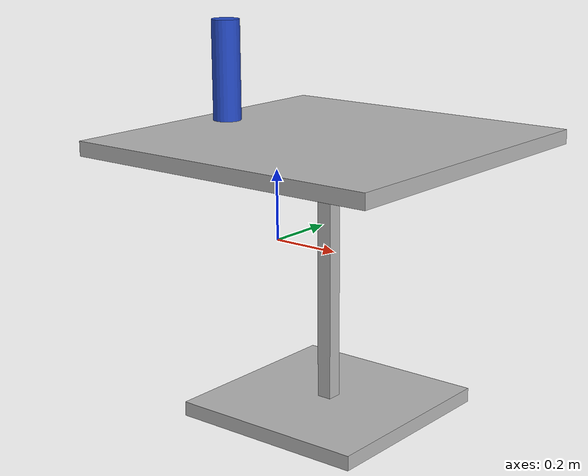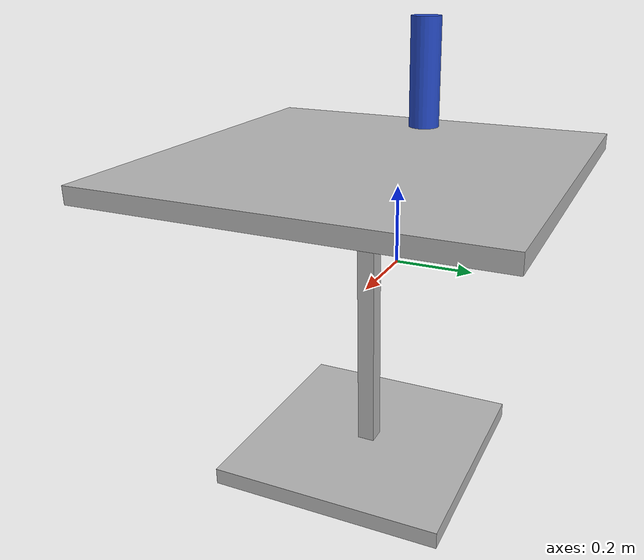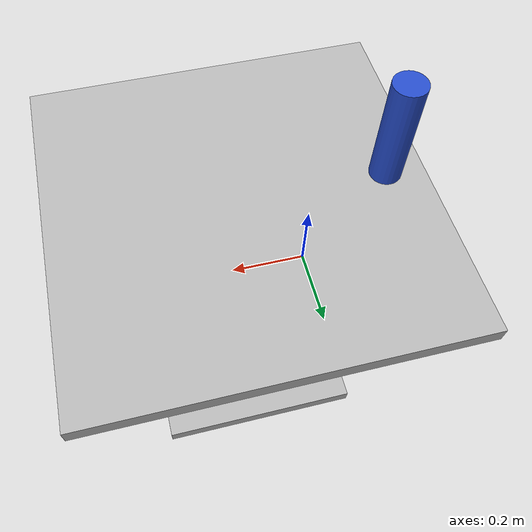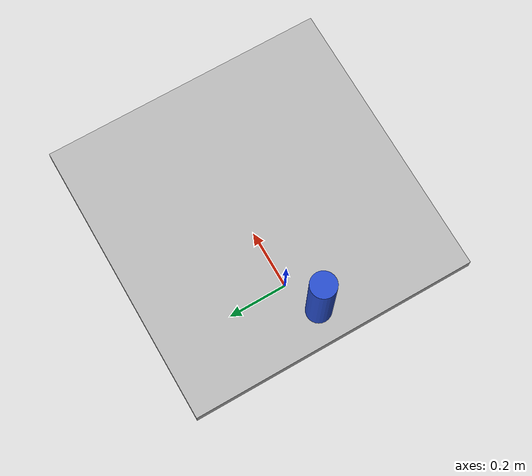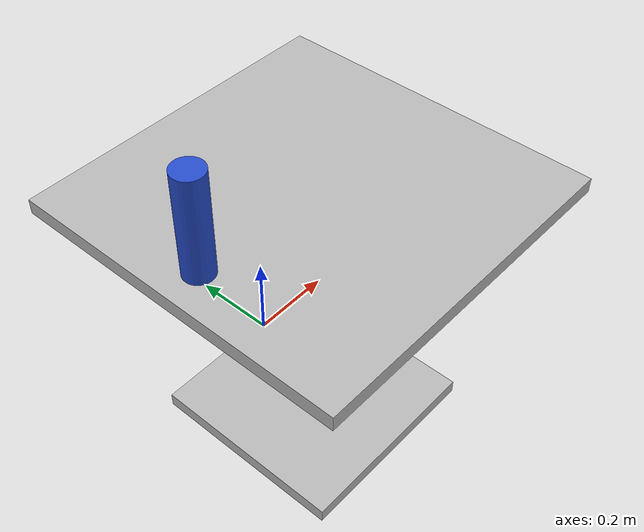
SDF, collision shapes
<?xml version='1.0'?>
<sdf version='1.7'>
  <model name='my_custom_world'>
    <link name='link_0'>
      <inertial>
        <mass>0.00174826</mass>
        <inertia>
          <ixx>1.219e-05</ixx>
          <ixy>0</ixy>
          <ixz>0</ixz>
          <iyy>1.219e-05</iyy>
          <iyz>0</iyz>
          <izz>1.36e-06</izz>
        </inertia>
        <pose>0 0 0 0 -0 0</pose>
      </inertial>
      <pose>-0.179649 0.000397 0.457223 0 -0 0</pose>
      <gravity>1</gravity>
      <self_collide>0</self_collide>
      <kinematic>0</kinematic>
      <enable_wind>0</enable_wind>
      <visual name='visual'>
        <pose>0 0 0 0 -0 0</pose>
        <geometry>
          <cylinder>
            <radius>0.039414</radius>
            <length>0.28109</length>
          </cylinder>
        </geometry>
        <material>
          <lighting>1</lighting>
          <script>
            <uri>file://media/materials/scripts/gazebo.material</uri>
            <name>Gazebo/Blue</name>
          </script>
          <shader type='pixel'>
            <normal_map>__default__</normal_map>
          </shader>
          <ambient>0 0 1 1</ambient>
          <diffuse>0 0 1 1</diffuse>
          <specular>0.1 0.1 0.1 1</specular>
          <emissive>0 0 0 1</emissive>
        </material>
        <transparency>0</transparency>
        <cast_shadows>1</cast_shadows>
      </visual>
      <collision name='collision'>
        <laser_retro>0</laser_retro>
        <max_contacts>10</max_contacts>
        <pose>0 0 0 0 -0 0</pose>
        <geometry>
          <cylinder>
            <radius>0.039414</radius>
            <length>0.28109</length>
          </cylinder>
        </geometry>
        <surface>
          <friction>
            <ode>
              <mu>1</mu>
              <mu2>1</mu2>
              <fdir1>0 0 0</fdir1>
              <slip1>0</slip1>
              <slip2>0</slip2>
            </ode>
            <torsional>
              <coefficient>1</coefficient>
              <patch_radius>0</patch_radius>
              <surface_radius>0</surface_radius>
              <use_patch_radius>1</use_patch_radius>
              <ode>
                <slip>0</slip>
              </ode>
            </torsional>
          </friction>
          <bounce>
            <restitution_coefficient>0</restitution_coefficient>
            <threshold>1e+06</threshold>
          </bounce>
          <contact>
            <collide_without_contact>0</collide_without_contact>
            <collide_without_contact_bitmask>1</collide_without_contact_bitmask>
            <collide_bitmask>1</collide_bitmask>
            <ode>
              <soft_cfm>0</soft_cfm>
              <soft_erp>0.2</soft_erp>
              <kp>1e+13</kp>
              <kd>1</kd>
              <max_vel>0.01</max_vel>
              <min_depth>0</min_depth>
            </ode>
            <bullet>
              <split_impulse>1</split_impulse>
              <split_impulse_penetration_threshold>-0.01</split_impulse_penetration_threshold>
              <soft_cfm>0</soft_cfm>
              <soft_erp>0.2</soft_erp>
              <kp>1e+13</kp>
              <kd>1</kd>
            </bullet>
          </contact>
        </surface>
      </collision>
    </link>
    <model name='cafe_table'>
      <static>1</static>
      <link name='link'>
        <collision name='surface'>
          <pose>0 0 0.755 0 -0 0</pose>
          <geometry>
            <box>
              <size>0.913 0.913 0.04</size>
            </box>
          </geometry>
        </collision>
        <collision name='column'>
          <pose>0 0 0.37 0 -0 0</pose>
          <geometry>
            <box>
              <size>0.042 0.042 0.74</size>
            </box>
          </geometry>
        </collision>
        <collision name='base'>
          <pose>0 0 0.02 0 -0 0</pose>
          <geometry>
            <box>
              <size>0.56 0.56 0.04</size>
            </box>
          </geometry>
        </collision>
        <visual name='visual'>
          <geometry>
            <mesh>
              <uri>model://cafe_table/meshes/cafe_table.dae</uri>
            </mesh>
          </geometry>
        </visual>
      </link>
      <pose>0.17965 -0.000397 -0.457223 0 -0 0</pose>
    </model>
    <static>0</static>
    <allow_auto_disable>1</allow_auto_disable>
  </model>
</sdf>
